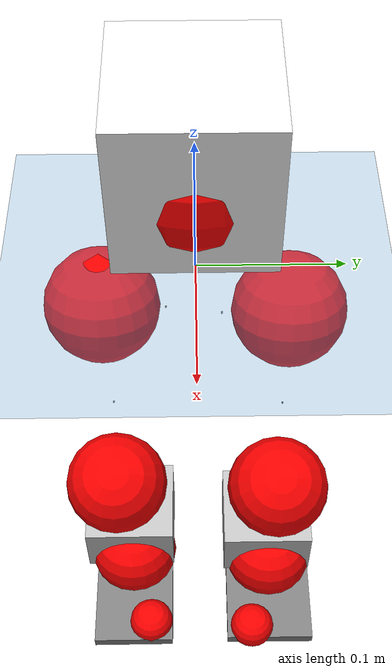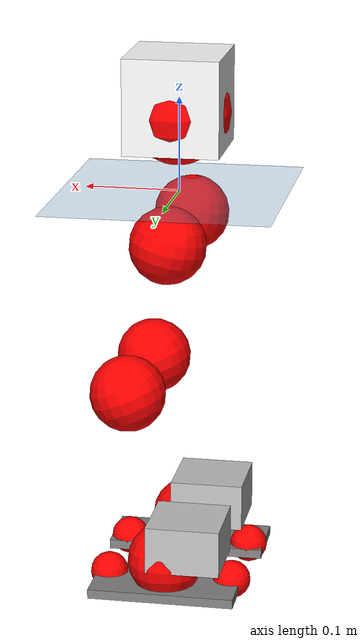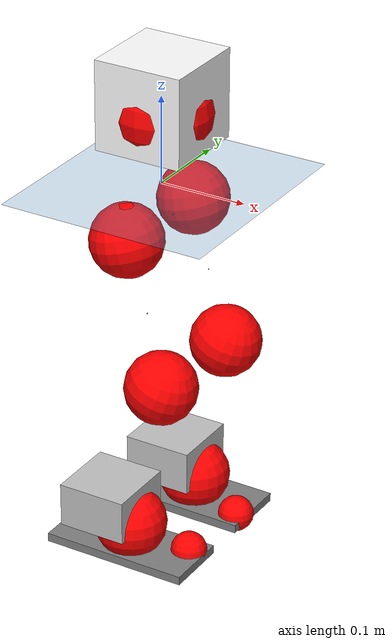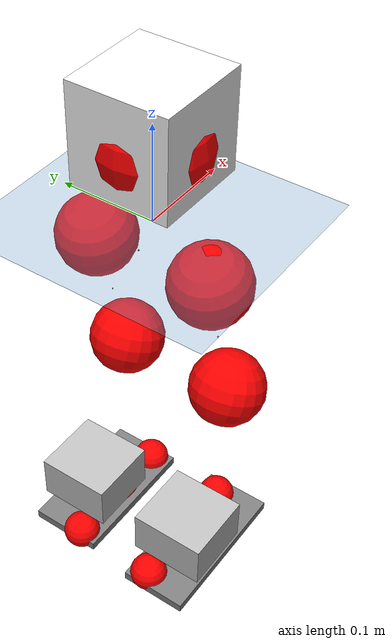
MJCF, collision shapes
<mujoco model="pi_12dof_release_v1">
  <compiler angle="radian" assetdir="assets" balanceinertia="true" inertiafromgeom="false"/>

  <option timestep="0.005" density="1.2" viscosity="2e-05"/>

  <size nkey="1"/>

  <visual>
    <quality shadowsize="8192"/>
    <map shadowclip="0.5"/>
  </visual>

  <default>
    <default class="/">
      <joint armature="0.01" damping="0.01" frictionloss="0.01"/>
      <geom contype="0" conaffinity="0" group="1" solref="-1000 -80"/>
      <site size="0.01 0.005 0.005" group="5"/>
      <general forcelimited="true" biastype="affine" gainprm="20" biasprm="0 -20 -0.5"/>
      <default class="foot">
        <geom size="0.0845 0.036 0.005" type="box" condim="6" group="4" priority="1" friction="0.9 0.2 0.2" solimp="0.015 1 0.005"/>
      </default>
      <default class="reward_collision_sphere">
        <geom group="5" rgba="1 0 0 1"/>
      </default>
    </default>
  </default>

  <asset>
    <texture type="skybox" colorspace="auto" name="//unnamed_texture_0" builtin="gradient" rgb1="0.95 0.95 0.95" rgb2="0.95 0.95 0.95" width="100" height="600"/>
    <texture type="2d" colorspace="auto" name="texplane" builtin="checker" rgb1="0.345 0.575 0.748" rgb2="0.345 0.575 0.748" markrgb="1 1 1" width="512" height="512"/>
    <material name="MatPlane" class="/" texture="texplane" texuniform="true" texrepeat="2 2" specular="0.9"/>
    <mesh name="baselink_1" class="/" file="baselink_1.STL"/>
    <mesh name="r_hip_pitch_link" class="/" file="r_hip_pitch_link.STL"/>
    <mesh name="r_hip_roll_link" class="/" file="r_hip_roll_link.STL"/>
    <mesh name="r_thigh_link" class="/" file="r_thigh_link.STL"/>
    <mesh name="r_calf_link" class="/" file="r_calf_link.STL"/>
    <mesh name="r_ankle_pitch_link" class="/" file="r_ankle_pitch_link.STL"/>
    <mesh name="r_ankle_roll_link" class="/" file="r_ankle_roll_link.STL"/>
    <mesh name="l_hip_pitch_link" class="/" file="l_hip_pitch_link.STL"/>
    <mesh name="l_hip_roll_link" class="/" file="l_hip_roll_link.STL"/>
    <mesh name="l_thigh_link" class="/" file="l_thigh_link.STL"/>
    <mesh name="l_calf_link" class="/" file="l_calf_link.STL"/>
    <mesh name="l_ankle_pitch_link" class="/" file="l_ankle_pitch_link.STL"/>
    <mesh name="l_ankle_roll_link" class="/" file="l_ankle_roll_link.STL"/>
  </asset>

  <worldbody>
    <geom name="floor" class="/" size="100 100 0.125" type="plane" group="0" material="MatPlane"/>
    <light name="toplight_shadow" class="/" pos="0 0 5" dir="0.0990148 0.0990148 -0.990148" type="directional" ambient="0.04 0.04 0.04" diffuse="0.55 0.55 0.55" specular="0.12 0.12 0.12"/>
    <light name="toplight_fill" class="/" pos="0 0 5" dir="0.0990148 0.0990148 -0.990148" type="directional" castshadow="false" ambient="0.04 0.04 0.04" diffuse="0.3 0.3 0.3" specular="0.08 0.08 0.08"/>
    <body name="trunk" pos="0.00103919 -1.35807e-05 -0.000600003" quat="1 -1.81426e-05 -3.68394e-05 3.6021e-05">
      <inertial pos="-0.000298623 -0.00299761 0.0493196" quat="0.697026 0.0116089 0.00506846 0.716933" mass="2.35242" diaginertia="0.00950141 0.00373189 0.0109746"/>
      <joint name="//unnamed_joint_0" type="free"/>
      <geom name="//unnamed_geom_1" class="/" type="mesh" density="0" rgba="1 1 1 1" mesh="baselink_1"/>
      <geom name="//unnamed_geom_2" class="/" size="0.0508069 0.0508069 0.0508069" pos="0 0 0.0972869" type="box" rgba="1 1 1 1"/>
      <geom name="//unnamed_geom_3" class="reward_collision_sphere" size="0.0558876" pos="0 0 0.085126"/>
      <site name="imu" class="/" pos="0.0134974 0.000621601 -0.0134848" size="0.0101614"/>
      <camera name="track" class="/" pos="0 -1.67633 0" quat="0.707107 0.707107 0 0" mode="trackcom"/>
      <camera name="ego_camera" class="/" pos="0.0745622 0 0.218895" quat="-0.5 -0.5 0.5 0.5"/>
      <body name="r_hip_pitch_link" pos="-0.00201549 -0.0210832 -0.0405388" quat="0.9922 -8.10131e-05 -0.124654 -6.60987e-06">
        <inertial pos="0.00129846 -0.0494375 -0.000235339" quat="-0.0189532 0.70557 -0.0276184 0.707848" mass="0.378504" diaginertia="0.000102092 3.80874e-05 0.000214277"/>
        <joint name="r_hip_pitch_joint" class="/" pos="0 0 0" axis="0.00245622 -0.999994 0.00240147" stiffness="0.00840481" range="-1.75206 1.19571" armature="0.00886124" damping="0.0129705" frictionloss="0.0102052"/>
        <geom name="//unnamed_geom_4" class="/" type="mesh" density="0" rgba="0.75294 0.75294 0.75294 1" mesh="r_hip_pitch_link"/>
        <geom name="//unnamed_geom_5" class="/" size="0.000508069 0.000508069 0.000508069" type="box" rgba="0.75294 0.75294 0.75294 1"/>
        <body name="r_hip_roll_link" pos="-0.00107664 -0.0443289 0.00139382" quat="0.999999 0.000929802 -0.000253309 0.00093384">
          <inertial pos="-0.00174466 5.21068e-05 -0.0741771" quat="0.705945 -0.0901519 -0.0814988 0.697762" mass="0.397718" diaginertia="0.000323363 0.000111069 0.000337419"/>
          <joint name="r_hip_roll_joint" class="/" pos="0 0 0" axis="-0.999955 0.00733934 -0.00603576" range="-0.129649 0.500605" armature="0.00940973" damping="0" frictionloss="0.011537"/>
          <geom name="//unnamed_geom_6" class="/" type="mesh" density="0" rgba="0.75294 0.75294 0.75294 1" mesh="r_hip_roll_link"/>
          <geom name="//unnamed_geom_7" class="/" size="0.000508069 0.000508069 0.000508069" type="box" rgba="0.75294 0.75294 0.75294 1"/>
          <geom name="//unnamed_geom_8" class="reward_collision_sphere" size="0.0406455"/>
          <body name="r_thigh_link" pos="0.0018517 0.00296329 -0.0849744" quat="1 0.000445813 -0.000333088 7.14742e-05">
            <inertial pos="0.000761418 -0.000842891 -0.0582439" quat="0.737191 0.675683 0.00102402 -0.000593903" mass="0.119109" diaginertia="0.000118964 3.95805e-05 0.000153758"/>
            <joint name="r_thigh_joint" class="/" pos="0 0 0" axis="-0.00132957 0.0029877 -0.999995" range="-0.340176 0.623689" armature="0.0116679" damping="0.00208492" frictionloss="0.0104286"/>
            <geom name="//unnamed_geom_9" class="/" type="mesh" density="0" rgba="0.75294 0.75294 0.75294 1" mesh="r_thigh_link"/>
            <geom name="//unnamed_geom_10" class="/" size="0.000508069 0.000508069 0.000508069" type="box" rgba="0.75294 0.75294 0.75294 1"/>
            <body name="r_calf_link" pos="-0.00219572 -0.00319911 -0.0852065" quat="0.947644 2.46127e-05 0.319328 -6.07414e-05">
              <inertial pos="-0.00200979 -0.00359451 -0.0865584" quat="0.999946 0.0074396 -0.00718924 0.000924782" mass="0.842177" diaginertia="0.00328623 0.0014807 0.000447259"/>
              <joint name="r_calf_joint" class="/" pos="0 0 0" axis="-0.0059165 -0.999974 -0.00424102" range="-1.64785 0.644854" armature="0.00994973" damping="0.014627" frictionloss="0.010275"/>
              <geom name="//unnamed_geom_11" class="/" type="mesh" density="0" rgba="0.75294 0.75294 0.75294 1" mesh="r_calf_link"/>
              <geom name="//unnamed_geom_12" class="/" size="0.000508069 0.000508069 0.000508069" type="box" rgba="0.75294 0.75294 0.75294 1"/>
              <geom name="//unnamed_geom_13" class="reward_collision_sphere" size="0.0406455"/>
              <body name="r_ankle_pitch_link" pos="0.00164004 0.000426731 -0.172424" quat="0.979922 0.000801514 -0.199378 -0.000709411">
                <inertial pos="0.00752551 0.00387486 -0.00125373" quat="0.000699129 0.709936 -0.00591172 0.704241" mass="0.192123" diaginertia="0.000297108 9.00202e-05 0.000333432"/>
                <joint name="r_ankle_pitch_joint" class="/" pos="0 0 0" axis="0.00589105 -0.999977 -0.00329119" range="-1.24571 0.533393" armature="0.0108072" damping="0" frictionloss="0.0101833"/>
                <geom name="//unnamed_geom_14" class="/" type="mesh" density="0" rgba="0.75294 0.75294 0.75294 1" mesh="r_ankle_pitch_link"/>
                <geom name="//unnamed_geom_15" class="/" size="0.0396294 0.0406455 0.0254034" type="box" rgba="0.75294 0.75294 0.75294 1"/>
                <body name="r_ankle_roll_link" pos="0.074309 0.00194827 0.000263061" quat="1 -0.000350034 -0.000353371 9.7646e-05">
                  <inertial pos="-0.0260196 -8.85136e-05 -0.0172055" quat="0.567648 0.43606 0.429182 0.550846" mass="0.567245" diaginertia="0.00112786 0.000437665 0.000771414"/>
                  <joint name="r_ankle_roll_joint" class="/" pos="0 0 0" axis="-0.999984 -0.00533771 -0.00162783" stiffness="0.000661505" range="-0.119945 0.159369" armature="0.0115463" damping="0.010546" frictionloss="0.00964078"/>
                  <geom name="//unnamed_geom_16" class="/" type="mesh" density="0" rgba="0.75294 0.75294 0.75294 1" mesh="r_ankle_roll_link"/>
                  <geom name="//unnamed_geom_17" class="/" type="mesh" rgba="0.75294 0.75294 0.75294 1" mesh="r_ankle_roll_link"/>
                  <geom name="right_foot" class="foot" size="0.0853622 0.0367635 0.00497295" pos="-0.0507023 0 -0.0535078"/>
                  <geom name="//unnamed_geom_19" class="reward_collision_sphere" size="0.0406455" pos="-0.0497081 0 -0.0243217"/>
                  <geom name="//unnamed_geom_20" class="reward_collision_sphere" size="0.0203227" pos="0.0149124 0.0167633 -0.0486434"/>
                  <geom name="//unnamed_geom_21" class="reward_collision_sphere" size="0.0203227" pos="-0.1193 0.0167633 -0.0486434"/>
                  <site name="right_foot" class="foot" pos="-0.0507023 0 -0.0535078" size="0.0101614"/>
                </body>
              </body>
            </body>
          </body>
        </body>
      </body>
      <body name="l_hip_pitch_link" pos="0.00213236 0.0179605 -0.0425888" quat="0.992197 -1.53878e-05 -0.124678 -9.59568e-06">
        <inertial pos="0.00110866 0.0465415 -0.00293574" quat="-0.0318709 0.704453 0.0388505 0.707969" mass="0.422954" diaginertia="0.000132941 4.55486e-05 0.000274253"/>
        <joint name="l_hip_pitch_joint" class="/" pos="0 0 0" axis="0.0019322 0.999998 0.000785826" range="-1.26943 1.7484" armature="0.0104537" damping="0.0170424" frictionloss="0.00932913"/>
        <geom name="//unnamed_geom_22" class="/" type="mesh" density="0" rgba="0.75294 0.75294 0.75294 1" mesh="l_hip_pitch_link"/>
        <geom name="//unnamed_geom_23" class="/" size="0.000508069 0.000508069 0.000508069" type="box" rgba="0.75294 0.75294 0.75294 1"/>
        <body name="l_hip_roll_link" pos="-0.00244158 0.0470363 0.00076295" quat="1 3.60868e-05 0.000152399 0.000228457">
          <inertial pos="-0.00439332 -0.000688502 -0.076721" quat="0.69943 -0.0756138 -0.0775844 0.706442" mass="0.399195" diaginertia="0.000305648 0.000114747 0.000332042"/>
          <joint name="l_hip_roll_joint" class="/" pos="0 0 0" axis="-0.999994 -0.00253159 -0.00223955" stiffness="0.000210689" range="-0.512767 0.141187" armature="0.0107117" damping="0.0166301" frictionloss="0.00966527"/>
          <geom name="//unnamed_geom_24" class="/" type="mesh" density="0" rgba="0.75294 0.75294 0.75294 1" mesh="l_hip_roll_link"/>
          <geom name="//unnamed_geom_25" class="/" size="0.000508069 0.000508069 0.000508069" type="box" rgba="0.75294 0.75294 0.75294 1"/>
          <geom name="//unnamed_geom_26" class="reward_collision_sphere" size="0.0406455"/>
          <body name="l_thigh_link" pos="-0.000573899 -0.000719017 -0.0842058" quat="1 0.000249913 -0.000350668 -0.000127863">
            <inertial pos="0.000821285 0.00104729 -0.0571548" quat="0.676163 0.73672 0.00479397 0.00485749" mass="0.121727" diaginertia="0.000122612 4.17073e-05 0.000157278"/>
            <joint name="l_thigh_joint" class="/" pos="0 0 0" axis="-0.000745536 0.000735592 -0.999999" range="-0.654722 0.271498" armature="0.009813" damping="0.0072607" frictionloss="0.0101983"/>
            <geom name="//unnamed_geom_27" class="/" type="mesh" density="0" rgba="0.75294 0.75294 0.75294 1" mesh="l_thigh_link"/>
            <geom name="//unnamed_geom_28" class="/" size="0.000508069 0.000508069 0.000508069" type="box" rgba="0.75294 0.75294 0.75294 1"/>
            <body name="l_calf_link" pos="0.00180613 -1.98167e-05 -0.0852667" quat="0.947665 0.000222678 0.319267 0.000234764">
              <inertial pos="-0.000719823 0.00295288 -0.0876417" quat="0.999852 0.00677137 0.00812816 0.0135414" mass="0.850803" diaginertia="0.00331156 0.00140092 0.000447696"/>
              <joint name="l_calf_joint" class="/" pos="0 0 0" axis="0.00386451 0.999932 0.0110469" range="-0.644257 1.64205" armature="0.0101431" damping="0" frictionloss="0.0099293"/>
              <geom name="//unnamed_geom_29" class="/" type="mesh" density="0" rgba="0.75294 0.75294 0.75294 1" mesh="l_calf_link"/>
              <geom name="//unnamed_geom_30" class="/" size="0.000508069 0.000508069 0.000508069" type="box" rgba="0.75294 0.75294 0.75294 1"/>
              <geom name="//unnamed_geom_31" class="reward_collision_sphere" size="0.0406455"/>
              <body name="l_ankle_pitch_link" pos="0.00275342 0.000355365 -0.173318" quat="0.979908 -0.000528494 -0.199445 -0.000768053">
                <inertial pos="0.00536601 0.000120858 -0.00102344" quat="-0.00201431 0.707066 0.00236573 0.707141" mass="0.176592" diaginertia="0.000285722 8.99759e-05 0.000314986"/>
                <joint name="l_ankle_pitch_joint" class="/" pos="0 0 0" axis="0.000626008 0.999998 -0.00200972" range="-0.522632 1.2737" armature="0.00944441" damping="0.00810512" frictionloss="0.0101102"/>
                <geom name="//unnamed_geom_32" class="/" type="mesh" density="0" rgba="0.75294 0.75294 0.75294 1" mesh="l_ankle_pitch_link"/>
                <geom name="//unnamed_geom_33" class="/" size="0.0396294 0.0406455 0.0254034" type="box" rgba="0.75294 0.75294 0.75294 1"/>
                <body name="l_ankle_roll_link" pos="0.0738942 0.00236769 3.57539e-05" quat="0.999999 -0.000909371 0.000381768 -0.000822436">
                  <inertial pos="-0.0220909 -0.0011212 -0.0185314" quat="0.551132 0.431474 0.437203 0.564745" mass="0.55494" diaginertia="0.00108804 0.000427116 0.00074968"/>
                  <joint name="l_ankle_roll_joint" class="/" pos="0 0 0" axis="-0.999999 -0.00096553 0.000793196" range="-0.102348 0.118337" armature="0.0114523" damping="0.0227172" frictionloss="0.0102314"/>
                  <geom name="//unnamed_geom_34" class="/" type="mesh" density="0" rgba="0.75294 0.75294 0.75294 1" mesh="l_ankle_roll_link"/>
                  <geom name="//unnamed_geom_35" class="/" type="mesh" rgba="0.75294 0.75294 0.75294 1" mesh="l_ankle_roll_link"/>
                  <geom name="left_foot" class="foot" size="0.0783147 0.0402394 0.0049684" pos="-0.0507023 0 -0.0535078"/>
                  <geom name="//unnamed_geom_37" class="reward_collision_sphere" size="0.0406455" pos="-0.0497081 0 -0.0243217"/>
                  <geom name="//unnamed_geom_38" class="reward_collision_sphere" size="0.0203227" pos="0.0149124 -0.0167633 -0.0486434"/>
                  <geom name="//unnamed_geom_39" class="reward_collision_sphere" size="0.0203227" pos="-0.1193 -0.0167633 -0.0486434"/>
                  <site name="left_foot" class="foot" pos="-0.0507023 0 -0.0535078" size="0.0101614"/>
                </body>
              </body>
            </body>
          </body>
        </body>
      </body>
    </body>
  </worldbody>

  <contact>
    <pair class="/" geom1="floor" geom2="right_foot" name="//unnamed_contact_1"/>
    <pair class="/" geom1="floor" geom2="left_foot" name="//unnamed_contact_0"/>
  </contact>

  <actuator>
    <general name="r_hip_pitch_joint" class="/" joint="r_hip_pitch_joint" forcerange="-23.2347 23.2347" gainprm="19.0954" biasprm="0 -19.0954 -0.515135"/>
    <general name="r_hip_roll_joint" class="/" joint="r_hip_roll_joint" forcerange="-21.351 21.351" gainprm="19.0954" biasprm="0 -19.0954 -0.515135"/>
    <general name="r_thigh_joint" class="/" joint="r_thigh_joint" forcerange="-21.5729 21.5729" gainprm="19.0954" biasprm="0 -19.0954 -0.515135"/>
    <general name="r_calf_joint" class="/" joint="r_calf_joint" forcerange="-23.4664 23.4664" gainprm="19.0954" biasprm="0 -19.0954 -0.515135"/>
    <general name="r_ankle_pitch_joint" class="/" joint="r_ankle_pitch_joint" forcerange="-20.6937 20.6937" gainprm="19.0954" biasprm="0 -19.0954 -0.515135"/>
    <general name="r_ankle_roll_joint" class="/" joint="r_ankle_roll_joint" forcerange="-21.5388 21.5388" gainprm="19.0954" biasprm="0 -19.0954 -0.515135"/>
    <general name="l_hip_pitch_joint" class="/" joint="l_hip_pitch_joint" forcerange="-19.6117 19.6117" gainprm="19.0954" biasprm="0 -19.0954 -0.515135"/>
    <general name="l_hip_roll_joint" class="/" joint="l_hip_roll_joint" forcerange="-19.1964 19.1964" gainprm="19.0954" biasprm="0 -19.0954 -0.515135"/>
    <general name="l_thigh_joint" class="/" joint="l_thigh_joint" forcerange="-21.8872 21.8872" gainprm="19.0954" biasprm="0 -19.0954 -0.515135"/>
    <general name="l_calf_joint" class="/" joint="l_calf_joint" forcerange="-21.658 21.658" gainprm="19.0954" biasprm="0 -19.0954 -0.515135"/>
    <general name="l_ankle_pitch_joint" class="/" joint="l_ankle_pitch_joint" forcerange="-22.799 22.799" gainprm="19.0954" biasprm="0 -19.0954 -0.515135"/>
    <general name="l_ankle_roll_joint" class="/" joint="l_ankle_roll_joint" forcerange="-22.2097 22.2097" gainprm="19.0954" biasprm="0 -19.0954 -0.515135"/>
  </actuator>

  <sensor>
    <gyro site="imu" name="imu_angular_velocity"/>
    <velocimeter site="imu" name="imu_linear_velocity"/>
    <framelinvel objtype="site" objname="left_foot" name="left_foot_global_linear_velocity"/>
    <framelinvel objtype="site" objname="right_foot" name="right_foot_global_linear_velocity"/>
  </sensor>

  <keyframe>
    <key name="home" qpos="0 0 0.291 1 0 0 0 0.4 0 0 -0.8 0.4 0 -0.4 0 0 0.8 -0.4 0"/>
  </keyframe>
</mujoco>
